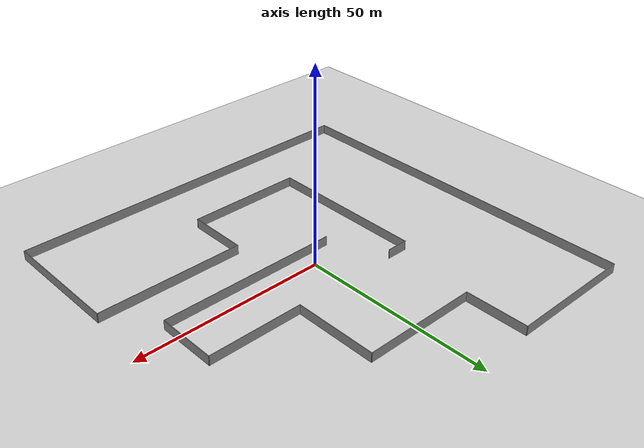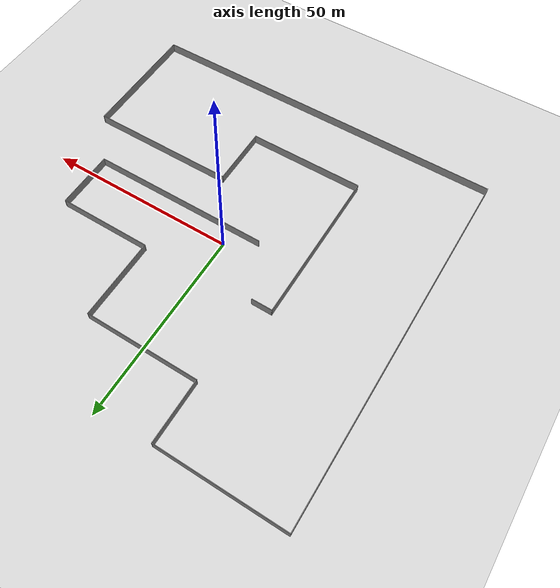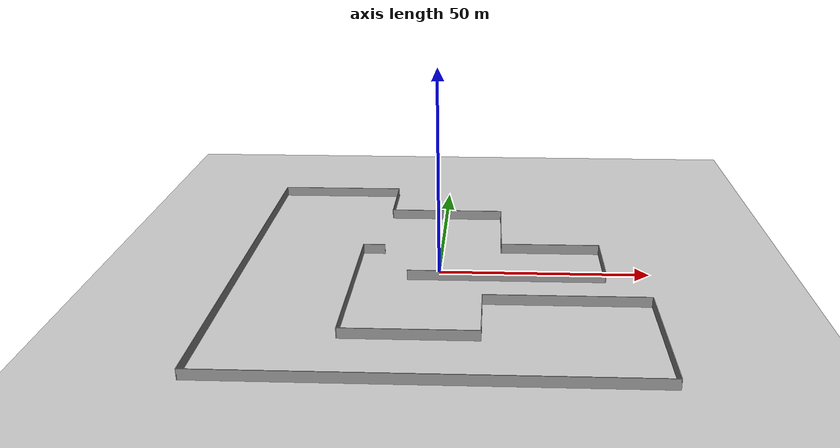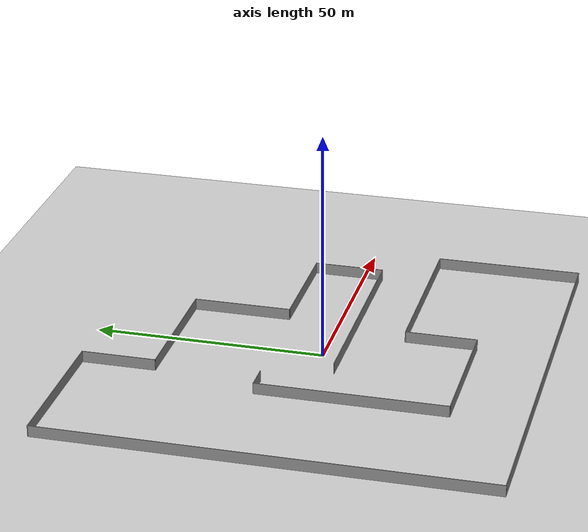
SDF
<sdf version="1.7">
 <world name="default">
  <light name="sun" type="directional">
   <pose>0 0 10 0 -0 0</pose>
   <diffuse>0.8 0.8 0.8 1</diffuse>
   <specular>0.2 0.2 0.2 1</specular>
   <attenuation>
    <range>1000</range>
    <constant>0.9</constant>
    <linear>0.01</linear>
    <quadratic>0.001</quadratic>
   </attenuation>
   <direction>-0.5 0.1 -0.9</direction>
   <spot><inner_angle>0</inner_angle><outer_angle>0</outer_angle><falloff>0</falloff></spot>
  </light>
  <model name="ground_plane">
   <static>1</static>
   <link name="link">
    <collision name="collision">
     <geometry><plane><normal>0 0 1</normal><size>100 100</size></plane></geometry>
     <surface>
      <contact><collide_bitmask>65535</collide_bitmask></contact>
      <friction><ode><mu>100</mu><mu2>50</mu2></ode></friction>
     </surface>
    </collision>
    <visual name="visual">
     <cast_shadows>0</cast_shadows>
     <geometry><plane><normal>0 0 1</normal><size>100 100</size></plane></geometry>
     <material>
      <script><uri>file://media/materials/scripts/gazebo.material</uri><name>Gazebo/Grey</name></script>
     </material>
    </visual>
   </link>
  </model>
  <gravity>0 0 -9.8</gravity>
  <magnetic_field>6e-06 2.3e-05 -4.2e-05</magnetic_field>
  <atmosphere type="adiabatic"/>
  <physics type="ode">
   <max_step_size>0.001</max_step_size>
   <real_time_factor>1</real_time_factor>
   <real_time_update_rate>1000</real_time_update_rate>
  </physics>
  <scene><ambient>0.4 0.4 0.4 1</ambient><background>0.7 0.7 0.7 1</background><shadows>1</shadows></scene>
  <spherical_coordinates>
   <surface_model>EARTH_WGS84</surface_model>
   <latitude_deg>0</latitude_deg>
   <longitude_deg>0</longitude_deg>
   <elevation>0</elevation>
   <heading_deg>0</heading_deg>
  </spherical_coordinates>
  <model name="boundary">
   <pose>0.327991 0.537399 0 0 -0 0</pose>
   <link name="Wall_0">
    <collision name="Wall_0_Collision">
     <geometry><box><size>46.75 0.15 2.5</size></box></geometry>
     <pose>0 0 1.25 0 -0 0</pose>
    </collision>
    <visual name="Wall_0_Visual">
     <pose>0 0 1.25 0 -0 0</pose>
     <geometry><box><size>46.75 0.15 2.5</size></box></geometry>
     <material>
      <script><uri>file://media/materials/scripts/gazebo.material</uri><name>Gazebo/Grey</name></script>
      <ambient>1 1 1 1</ambient>
     </material>
     <meta><layer>0</layer></meta>
    </visual>
    <pose>15.575 -4.75 0 0 -0 0</pose>
   </link>
   <link name="Wall_1">
    <collision name="Wall_1_Collision">
     <geometry><box><size>15.5 0.15 2.5</size></box></geometry>
     <pose>0 0 1.25 0 -0 0</pose>
    </collision>
    <visual name="Wall_1_Visual">
     <pose>0 0 1.25 0 -0 0</pose>
     <geometry><box><size>15.5 0.15 2.5</size></box></geometry>
     <material>
      <script><uri>file://media/materials/scripts/gazebo.material</uri><name>Gazebo/Grey</name></script>
      <ambient>1 1 1 1</ambient>
     </material>
     <meta><layer>0</layer></meta>
    </visual>
    <pose>38.875 2.925 0 0 -0 1.5708</pose>
   </link>
   <link name="Wall_10">
    <collision name="Wall_10_Collision">
     <geometry><box><size>38 0.15 2.5</size></box></geometry>
     <pose>0 0 1.25 0 -0 0</pose>
    </collision>
    <visual name="Wall_10_Visual">
     <pose>0 0 1.25 0 -0 0</pose>
     <geometry><box><size>38 0.15 2.5</size></box></geometry>
     <material>
      <script><uri>file://media/materials/scripts/gazebo.material</uri><name>Gazebo/Grey</name></script>
      <ambient>1 1 1 1</ambient>
     </material>
     <meta><layer>0</layer></meta>
    </visual>
    <pose>29 -16.2 0 0 -0 3.14159</pose>
   </link>
   <link name="Wall_11">
    <collision name="Wall_11_Collision">
     <geometry><box><size>15.75 0.15 2.5</size></box></geometry>
     <pose>0 0 1.25 0 -0 0</pose>
    </collision>
    <visual name="Wall_11_Visual">
     <pose>0 0 1.25 0 -0 0</pose>
     <geometry><box><size>15.75 0.15 2.5</size></box></geometry>
     <material>
      <script><uri>file://media/materials/scripts/gazebo.material</uri><name>Gazebo/Grey</name></script>
      <ambient>1 1 1 1</ambient>
     </material>
     <meta><layer>0</layer></meta>
    </visual>
    <pose>10.075 -24 0 0 -0 -1.5708</pose>
   </link>
   <link name="Wall_12">
    <collision name="Wall_12_Collision">
     <geometry><box><size>30.25 0.15 2.5</size></box></geometry>
     <pose>0 0 1.25 0 -0 0</pose>
    </collision>
    <visual name="Wall_12_Visual">
     <pose>0 0 1.25 0 -0 0</pose>
     <geometry><box><size>30.25 0.15 2.5</size></box></geometry>
     <material>
      <script><uri>file://media/materials/scripts/gazebo.material</uri><name>Gazebo/Grey</name></script>
      <ambient>1 1 1 1</ambient>
     </material>
     <meta><layer>0</layer></meta>
    </visual>
    <pose>-4.975 -31.8 0 0 -0 3.14159</pose>
   </link>
   <link name="Wall_13">
    <collision name="Wall_13_Collision">
     <geometry><box><size>41.25 0.15 2.5</size></box></geometry>
     <pose>0 0 1.25 0 -0 0</pose>
    </collision>
    <visual name="Wall_13_Visual">
     <pose>0 0 1.25 0 -0 0</pose>
     <geometry><box><size>41.25 0.15 2.5</size></box></geometry>
     <material>
      <script><uri>file://media/materials/scripts/gazebo.material</uri><name>Gazebo/Grey</name></script>
      <ambient>1 1 1 1</ambient>
     </material>
     <meta><layer>0</layer></meta>
    </visual>
    <pose>-20.025 -11.25 0 0 -0 1.5708</pose>
   </link>
   <link name="Wall_14">
    <collision name="Wall_14_Collision">
     <geometry><box><size>5.5 0.15 2.5</size></box></geometry>
     <pose>0 0 1.25 0 -0 0</pose>
    </collision>
    <visual name="Wall_14_Visual">
     <pose>0 0 1.25 0 -0 0</pose>
     <geometry><box><size>5.5 0.15 2.5</size></box></geometry>
     <material>
      <script><uri>file://media/materials/scripts/gazebo.material</uri><name>Gazebo/Grey</name></script>
      <ambient>1 1 1 1</ambient>
     </material>
     <meta><layer>0</layer></meta>
    </visual>
    <pose>-17.35 9.3 0 0 -0 0</pose>
   </link>
   <link name="Wall_2">
    <collision name="Wall_2_Collision">
     <geometry><box><size>24.5 0.15 2.5</size></box></geometry>
     <pose>0 0 1.25 0 -0 0</pose>
    </collision>
    <visual name="Wall_2_Visual">
     <pose>0 0 1.25 0 -0 0</pose>
     <geometry><box><size>24.5 0.15 2.5</size></box></geometry>
     <material>
      <script><uri>file://media/materials/scripts/gazebo.material</uri><name>Gazebo/Grey</name></script>
      <ambient>1 1 1 1</ambient>
     </material>
     <meta><layer>0</layer></meta>
    </visual>
    <pose>26.7 10.6 0 0 -0 3.14159</pose>
   </link>
   <link name="Wall_3">
    <collision name="Wall_3_Collision">
     <geometry><box><size>21.5 0.15 2.5</size></box></geometry>
     <pose>0 0 1.25 0 -0 0</pose>
    </collision>
    <visual name="Wall_3_Visual">
     <pose>0 0 1.25 0 -0 0</pose>
     <geometry><box><size>21.5 0.15 2.5</size></box></geometry>
     <material>
      <script><uri>file://media/materials/scripts/gazebo.material</uri><name>Gazebo/Grey</name></script>
      <ambient>1 1 1 1</ambient>
     </material>
     <meta><layer>0</layer></meta>
    </visual>
    <pose>14.525 21.275 0 0 -0 1.5708</pose>
   </link>
   <link name="Wall_4">
    <collision name="Wall_4_Collision">
     <geometry><box><size>29.75 0.15 2.5</size></box></geometry>
     <pose>0 0 1.25 0 -0 0</pose>
    </collision>
    <visual name="Wall_4_Visual">
     <pose>0 0 1.25 0 -0 0</pose>
     <geometry><box><size>29.75 0.15 2.5</size></box></geometry>
     <material>
      <script><uri>file://media/materials/scripts/gazebo.material</uri><name>Gazebo/Grey</name></script>
      <ambient>1 1 1 1</ambient>
     </material>
     <meta><layer>0</layer></meta>
    </visual>
    <pose>-0.274999 31.95 0 0 -0 3.14159</pose>
   </link>
   <link name="Wall_5">
    <collision name="Wall_5_Collision">
     <geometry><box><size>16.25 0.15 2.5</size></box></geometry>
     <pose>0 0 1.25 0 -0 0</pose>
    </collision>
    <visual name="Wall_5_Visual">
     <pose>0 0 1.25 0 -0 0</pose>
     <geometry><box><size>16.25 0.15 2.5</size></box></geometry>
     <material>
      <script><uri>file://media/materials/scripts/gazebo.material</uri><name>Gazebo/Grey</name></script>
      <ambient>1 1 1 1</ambient>
     </material>
     <meta><layer>0</layer></meta>
    </visual>
    <pose>-15.075 40 0 0 -0 1.5708</pose>
   </link>
   <link name="Wall_6">
    <collision name="Wall_6_Collision">
     <geometry><box><size>33 0.15 2.5</size></box></geometry>
     <pose>0 0 1.25 0 -0 0</pose>
    </collision>
    <visual name="Wall_6_Visual">
     <pose>0 0 1.25 0 -0 0</pose>
     <geometry><box><size>33 0.15 2.5</size></box></geometry>
     <material>
      <script><uri>file://media/materials/scripts/gazebo.material</uri><name>Gazebo/Grey</name></script>
      <ambient>1 1 1 1</ambient>
     </material>
     <meta><layer>0</layer></meta>
    </visual>
    <pose>-31.5 48.05 0 0 -0 3.14159</pose>
   </link>
   <link name="Wall_7">
    <collision name="Wall_7_Collision">
     <geometry><box><size>96.25 0.15 2.5</size></box></geometry>
     <pose>0 0 1.25 0 -0 0</pose>
    </collision>
    <visual name="Wall_7_Visual">
     <pose>0 0 1.25 0 -0 0</pose>
     <geometry><box><size>96.25 0.15 2.5</size></box></geometry>
     <material>
      <script><uri>file://media/materials/scripts/gazebo.material</uri><name>Gazebo/Grey</name></script>
      <ambient>1 1 1 1</ambient>
     </material>
     <meta><layer>0</layer></meta>
    </visual>
    <pose>-47.925 -0 0 0 -0 -1.5708</pose>
   </link>
   <link name="Wall_8">
    <collision name="Wall_8_Collision">
     <geometry><box><size>96 0.15 2.5</size></box></geometry>
     <pose>0 0 1.25 0 -0 0</pose>
    </collision>
    <visual name="Wall_8_Visual">
     <pose>0 0 1.25 0 -0 0</pose>
     <geometry><box><size>96 0.15 2.5</size></box></geometry>
     <material>
      <script><uri>file://media/materials/scripts/gazebo.material</uri><name>Gazebo/Grey</name></script>
      <ambient>1 1 1 1</ambient>
     </material>
     <meta><layer>0</layer></meta>
    </visual>
    <pose>1e-06 -48.05 0 0 -0 0</pose>
   </link>
   <link name="Wall_9">
    <collision name="Wall_9_Collision">
     <geometry><box><size>32 0.15 2.5</size></box></geometry>
     <pose>0 0 1.25 0 -0 0</pose>
    </collision>
    <visual name="Wall_9_Visual">
     <pose>0 0 1.25 0 -0 0</pose>
     <geometry><box><size>32 0.15 2.5</size></box></geometry>
     <material>
      <script><uri>file://media/materials/scripts/gazebo.material</uri><name>Gazebo/Grey</name></script>
      <ambient>1 1 1 1</ambient>
     </material>
     <meta><layer>0</layer></meta>
    </visual>
    <pose>47.925 -32.125 0 0 -0 1.5708</pose>
   </link>
   <static>1</static>
  </model>
 </world>
</sdf>
